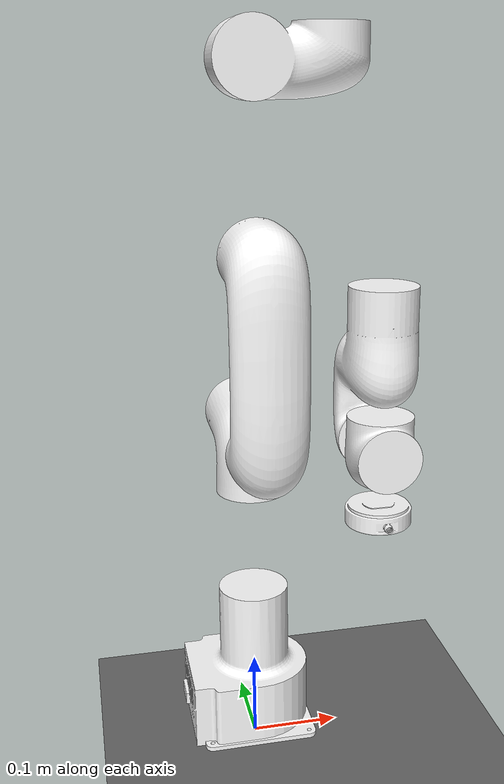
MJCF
<mujoco model="uf850_nohand">
  <option iterations="50" timestep="0.001" solver="PGS" gravity="0 0 -9.81" />

  <compiler angle="radian" meshdir="assets" eulerseq="zyx" autolimits="true" />

  <default>
    <joint limited="true" damping="0.01" armature="0.01" frictionloss="0.01" />
    <geom condim="4" contype="1" conaffinity="15" friction="0.9 0.2 0.2" solref="0.001 2" />
    <motor ctrllimited="true" />
    <equality solref="0.001 2" />

    <default class="size0">
      <joint damping="20"/>
      <general gainprm="2500" biasprm="0 -2500 -250" forcerange="-200 200"/>
    </default>
    <default class="size1">
      <joint damping="15"/>
      <general gainprm="1900" biasprm="0 -1900 -190" forcerange="-90 90"/>
    </default>
    <default class="size2">
      <joint damping="10"/>
      <general gainprm="1600" biasprm="0 -1600 -160" forcerange="-70 70"/>
    </default>
    <default class="size3">
      <joint damping="2"/>
      <general gainprm="800" biasprm="0 -800 -80" forcerange="-20 20"/>
    </default>
    <default class="visualgeom">
      <geom material="visualgeom" condim="1" contype="0" conaffinity="0" />
    </default>
  </default>

  <asset>
    <mesh name="link_base" file="visual/link_base.stl" />
    <mesh name="link1" file="visual/link1.stl" />
    <mesh name="link2" file="visual/link2.stl" />
    <mesh name="link3" file="visual/link3.stl" />
    <mesh name="link4" file="visual/link4.stl"/>
    <mesh name="link5" file="visual/link5.stl"/>
    <mesh name="link6" file="visual/link6.stl"/>
    <texture name="texplane" type="2d" builtin="checker" rgb1=".0 .0 .0" rgb2=".8 .8 .8" width="100" height="100" />
    <material name="matplane" reflectance="0." texture="texplane" texrepeat="1 1" texuniform="true" />
    <material name="visualgeom" rgba="0.5 0.9 0.2 1" />
  </asset>

  <worldbody>
    <light directional="true" diffuse="0.4 0.4 0.4" specular="0.1 0.1 0.1" pos="0 0 5.0" dir="0 0 -1" castshadow="false" />
    <light directional="true" diffuse="0.6 0.6 0.6" specular="0.2 0.2 0.2" pos="0 0 4" dir="0 0 -1" />
    <geom name="ground" type="plane" pos="0 0 0" size="100 100 0.001" quat="1 0 0 0" material="matplane" condim="3" conaffinity="15" />
    <camera name="fixed" pos="0 -3.0 0.5257061017709976" xyaxes="1 0 0 0 0 1" />
    <camera name="track" mode="trackcom" pos="0 -3.0 0.5257061017709976" xyaxes="1 0 0 0 0 1" />
    <body name="root" pos="0 0 0.02570610177099758" quat="1 0 0 0">
      <site name="imu" size="0.01" pos="0 0 0" />
      <geom type="mesh" rgba="1 1 1 1" mesh="link_base" contype="1" conaffinity="0" density="0" group="1" class="visualgeom" />
      <geom type="mesh" rgba="1 1 1 1" mesh="link_base" />
      <body name="link1" pos="0 0 0.364">
        <inertial pos="5.7e-05 0.013842 -0.02055" quat="0.999624 -0.0273411 -0.000364635 -0.00185749" mass="4.807" diaginertia="0.0220018 0.0189206 0.0122503" />
        <joint name="joint1" pos="0 0 0" axis="0 0 1" range="-6.28319 6.28319" actuatorfrcrange="-200 200" damping="16.6" frictionloss="9.6" />
        <geom type="mesh" rgba="1 1 1 1" mesh="link1" contype="1" conaffinity="0" density="0" group="1" class="visualgeom" />
        <geom type="mesh" rgba="1 1 1 1" mesh="link1" />
        <body name="link2" quat="0.499998 0.5 -0.5 0.500002">
          <inertial pos="0.323425 9.5e-05 0.007586" quat="0.463878 0.532622 0.539126 0.458775" mass="3.28" diaginertia="0.0642088 0.0624144 0.00637301" />
          <joint name="joint2" pos="0 0 0" axis="0 0 1" range="-2.30383 2.30383" actuatorfrcrange="-200 200" damping="12.5" frictionloss="12.1" />
          <geom type="mesh" rgba="1 1 1 1" mesh="link2" contype="1" conaffinity="0" density="0" group="1" class="visualgeom" />
          <geom type="mesh" rgba="1 1 1 1" mesh="link2" />
          <body name="link3" pos="0.39 0 0" quat="-2.59734e-06 -0.707105 0.707108 2.59735e-06">
            <inertial pos="0.128834 0.11341 0.00978" quat="0.781477 0.318832 -0.496505 0.202789" mass="2.237" diaginertia="0.0155188 0.0144822 0.00312732" />
            <joint name="joint3" pos="0 0 0" axis="0 0 1" range="-4.2237 0.061087" actuatorfrcrange="-90 90" damping="4" frictionloss="5.5" />
            <geom type="mesh" rgba="1 1 1 1" mesh="link3" contype="1" conaffinity="0" density="0" group="1" class="visualgeom" />
            <geom type="mesh" rgba="1 1 1 1" mesh="link3" />
            <body name="link4" pos="0.15 0.426 0" quat="0.707105 -0.707108 0 0">
              <inertial pos="0.000266 -0.03833 -0.101915" quat="0.983546 0.180625 -0.00118669 -0.00323727" mass="2.041" diaginertia="0.0199188 0.0197497 0.00204912" />
              <joint name="joint4" pos="0 0 0" axis="0 0 1" range="-6.28319 6.28319" actuatorfrcrange="-68 68" damping="3.6" frictionloss="2.2" />
              <geom type="mesh" rgba="1 1 1 1" mesh="link4" contype="1" conaffinity="0" density="0" group="1" class="visualgeom" />
              <geom type="mesh" rgba="1 1 1 1" mesh="link4" />
              <body name="link5" quat="0.707105 -0.707108 0 0">
                <inertial pos="5.7e-05 -0.015267 -0.001015" quat="0.709629 0.704516 0.00436677 -0.00807823" mass="1.385" diaginertia="0.00207749 0.00203574 0.00110911" />
                <joint name="joint5" pos="0 0 0" axis="0 0 1" range="-2.1642 2.1642" actuatorfrcrange="-19 19" damping="3.45" frictionloss="3.2" />
                <geom type="mesh" rgba="1 1 1 1" mesh="link5" contype="1" conaffinity="0" density="0" group="1" class="visualgeom" />
                <geom type="mesh" rgba="1 1 1 1" mesh="link5" />
                <body name="link6" pos="0 -0.09 0" quat="0.707105 0.707108 0 0">
                  <inertial pos="0.000484 -0.000334 -0.014217" quat="0.63763 0.308332 -0.636717 0.30488" mass="0.225" diaginertia="0.000232503 0.000133671 0.000124886" />
                  <joint name="joint6" pos="0 0 0" axis="0 0 1" range="-6.28319 6.28319" actuatorfrcrange="-19 19" damping="3.4" frictionloss="1.1" />
                  <geom type="mesh" rgba="1 1 1 1" mesh="link6" contype="1" conaffinity="0" density="0" group="1" class="visualgeom" />
                  <geom type="mesh" rgba="1 1 1 1" mesh="link6" />
                  <site name="attachment_site" pos="0 0 0" size="0.01" rgba="1 0 0 1"/>
                </body>
              </body>
            </body>
          </body>
        </body>
      </body>
    </body>
  </worldbody>

  <actuator>
    <general name="joint1" joint="joint1" class="size0" biastype="affine" ctrlrange="-6.28319 6.28319"/>
    <general name="joint2" joint="joint2" class="size0" biastype="affine" ctrlrange="-2.30383 2.30383"/>
    <general name="joint3" joint="joint3" class="size1" biastype="affine" ctrlrange="-4.2237 0.061087"/>
    <general name="joint4" joint="joint4" class="size2" biastype="affine" ctrlrange="-6.28319 6.28319"/>
    <general name="joint5" joint="joint5" class="size3" biastype="affine" ctrlrange="-2.1642 2.1642"/>
    <general name="joint6" joint="joint6" class="size3" biastype="affine" ctrlrange="-6.28319 6.28319"/>
  </actuator>

  <sensor>
    <actuatorpos name="joint1_p" actuator="joint1" />
    <actuatorvel name="joint1_v" actuator="joint1" />
    <actuatorfrc name="joint1_f" actuator="joint1" noise="0.001" />
    <actuatorpos name="joint2_p" actuator="joint2" />
    <actuatorvel name="joint2_v" actuator="joint2" />
    <actuatorfrc name="joint2_f" actuator="joint2" noise="0.001" />
    <actuatorpos name="joint3_p" actuator="joint3" />
    <actuatorvel name="joint3_v" actuator="joint3" />
    <actuatorfrc name="joint3_f" actuator="joint3" noise="0.001" />
    <actuatorpos name="joint4_p" actuator="joint4" />
    <actuatorvel name="joint4_v" actuator="joint4" />
    <actuatorfrc name="joint4_f" actuator="joint4" noise="0.001" />
    <actuatorpos name="joint5_p" actuator="joint5" />
    <actuatorvel name="joint5_v" actuator="joint5" />
    <actuatorfrc name="joint5_f" actuator="joint5" noise="0.001" />
    <actuatorpos name="joint6_p" actuator="joint6" />
    <actuatorvel name="joint6_v" actuator="joint6" />
    <actuatorfrc name="joint6_f" actuator="joint6" noise="0.001" />
    <framequat name="orientation" objtype="site" noise="0.001" objname="imu" />
    <gyro name="angular-velocity" site="imu" noise="0.005" cutoff="34.9" />
  </sensor>
  <keyframe>
    <key name="home" qpos="-1.5708 -1.5708 1.5708 -1.5708 -1.5708 0" ctrl="-1.5708 -1.5708 1.5708 -1.5708 -1.5708 0"/>
  </keyframe>
</mujoco>
